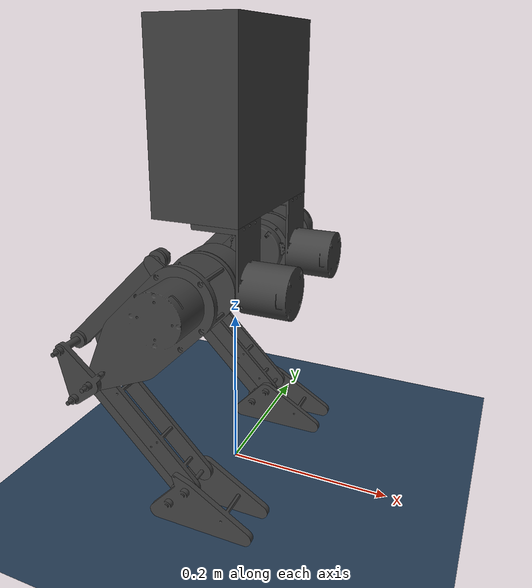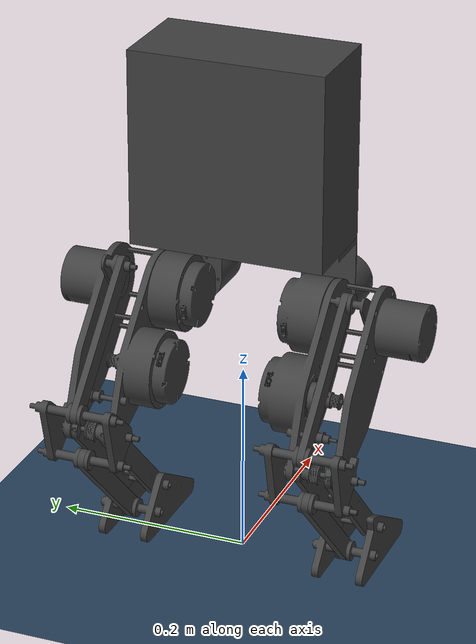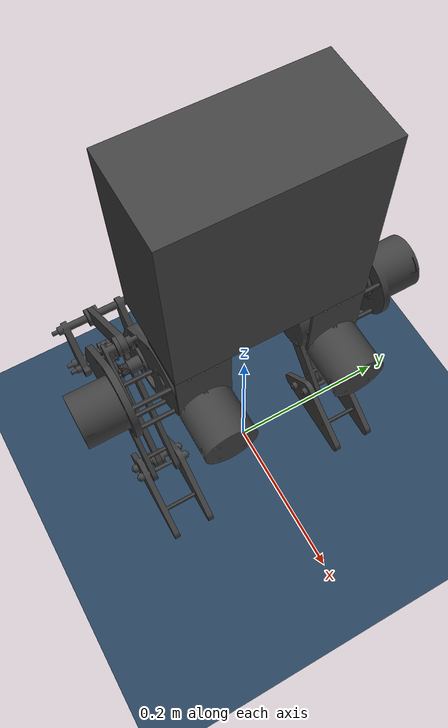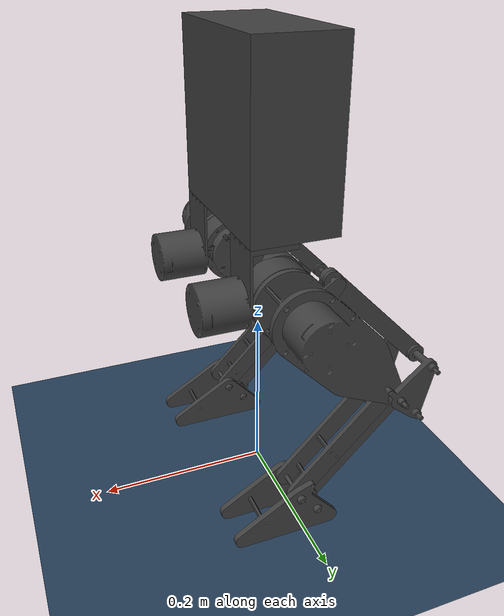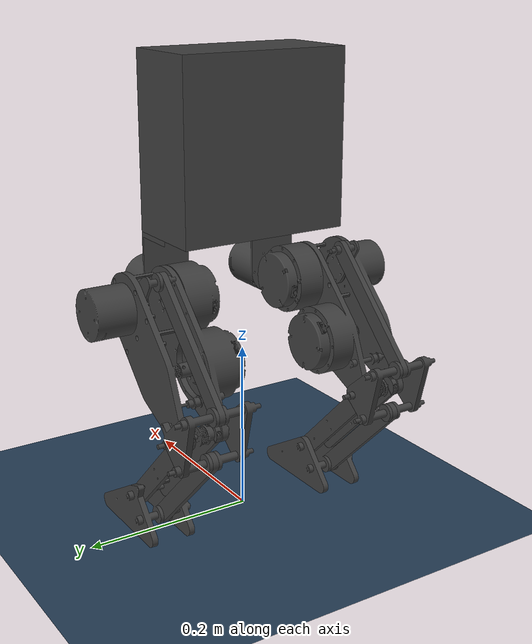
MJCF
<mujoco model="plance ground scene">
  <include file="robot.xml"/>

  <visual>
    <headlight diffuse="0.6 0.6 0.6" ambient="0.3 0.3 0.3" specular="0 0 0"/>
    <rgba haze="0.15 0.25 0.35 1"/>
    <global azimuth="150" elevation="-20"/>
  </visual>

  <asset>
    <texture type="skybox" builtin="gradient" rgb1="0.3 0.5 0.7" rgb2="0 0 0" width="512" height="3072"/>
    <texture type="2d" name="groundplane" builtin="checker" mark="edge" rgb1="0.2 0.3 0.4" rgb2="0.1 0.2 0.3"
      markrgb="0.8 0.8 0.8" width="300" height="300"/>
    <material name="groundplane" texture="groundplane" texuniform="true" texrepeat="5 5" reflectance="0.2"/>
  </asset>

  <worldbody>
    <light pos="0 0 3" dir="0 0 -1" directional="false"/>
    <geom name="floor" size="0 0 .125" type="plane" material="groundplane" conaffinity="15" condim="3"/>
  </worldbody>
</mujoco>

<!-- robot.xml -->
<mujoco model="robot">

    <option
        timestep="0.0005"
        integrator="implicitfast"
        solver="Newton"
        cone="elliptic"
        tolerance="1e-10">

        <flag nativeccd="disable"/>
    </option>

    <compiler
      balanceinertia="false"
      angle="degree"
      eulerseq="xyz"
      meshdir="asset\v5"
      discardvisual="false"
      inertiafromgeom="false"/>

    <asset>
        <material name="black_visual"
              rgba="0.25 0.25 0.25 1"
              specular="0.1"
              shininess="0.1"/>

        <mesh name="base" file="Base.STL"/>
        <mesh name="pelvis_left" file="Pelvis_Left.STL"/>
        <mesh name="thigh_1_left" file="Thigh_1_Left.STL"/>
        <mesh name="thigh_2_left" file="Thigh_2_Left.STL"/>
        <mesh name="ankle_1_left" file="Anlke_1_Left.STL"/>
        <mesh name="ankle_2_left" file="Anlke_2_Left.STL"/>
        <mesh name="ankle_3_left" file="Anlke_3_Left.STL"/>
        <mesh name="ankle_4_left" file="Anlke_4_Left.STL"/>
        <mesh name="calf_left" file="Calf_Left.STL"/>
        <mesh name="feet_left" file="Feet_Left.STL"/>

        <mesh name="pelvis_right" file="Pelvis_Right.STL"/>
        <mesh name="thigh_1_right" file="Thigh_1_Right.STL"/>
        <mesh name="thigh_2_right" file="Thigh_2_Right.STL"/>
        <mesh name="ankle_1_right" file="Anlke_1_Right.STL"/>
        <mesh name="ankle_2_right" file="Anlke_2_Right.STL"/>
        <mesh name="ankle_3_right" file="Anlke_3_Right.STL"/>
        <mesh name="ankle_4_right" file="Anlke_4_Right.STL"/>
        <mesh name="calf_right" file="Calf_Right.STL"/>
        <mesh name="feet_right" file="Feet_Right.STL"/>
    </asset>

    <default>
        <geom contype="0" conaffinity="0" condim="1" solref="0.005 1"/>
        <equality solref="0.005 1"/>

        <default class="visual">
            <geom group="2" material="black_visual"/>
        </default>

        <default class="collision">
            <geom group="3" rgba="0.3 0.75 1.0 0.25"/>
            <default class="collision-left">
                <geom contype="2" conaffinity="4"/>
            </default>
            <default class="collision-right">
                <geom contype="4" conaffinity="2"/>
            </default>
        </default>
    </default>

    <worldbody>
        <light name="spotlight" mode="targetbody" target="base" pos="0 -1 2"/>

        <!-- Base -->
        <body name="base" pos="0 0 0.3418" childclass="visual">
            <camera name="track" pos="0 -3 1" zaxis="0 -1 0.5" mode="track"/>
            <inertial pos="0 0 0.1" mass="2.0"
                fullinertia="0.013333 0.008333 0.008333 0.0 0.0 0.0"/>
            <geom type="mesh" mesh="base"/>
            <geom type="box" pos="0.0 0.0 0.1" size="0.05 0.1 0.1" class="collision"/>
            <freejoint/>
            <site name="imu" size="0.001"/>

        <!-- Left Leg -->
            <!-- Pelvis Left -->
            <body name="pelvis_left" pos="0.055 0.0715 -0.07" childclass="visual">
                <inertial pos="0.012326 0.0 0.010400" mass="0.385536"
                    fullinertia="0.000360 0.000475 0.000284 0.0 0.000154 0.0"/>
                <geom type="mesh" mesh="pelvis_left"/>
                <geom type="capsule" fromto="0.046 0.0 0.0 -0.008 0.0 0.0" size="0.0285" class="collision-left"/>

                <!-- Thigh 1 Left -->
                <body name="thigh_1_left" pos="-0.04912 0 0" childclass="visual">
                    <inertial pos="0.000476 -0.002984 0.0" mass="0.422706"
                        fullinertia="0.000209 0.000306 0.000218 -0.000001 0.0 0.0"/>
                    <geom type="mesh" mesh="thigh_1_left"/>
                    <joint name="hip_roll_left" type="hinge" axis="1 0 0" range="-30 30" damping="0.01" actuatorfrcrange="-14 14"/>

                    <!-- Thigh 2 Left -->
                    <body name="thigh_2_left" pos="0 0.01919 0" childclass="visual">
                        <inertial pos="-0.037011 0.022153 -0.037058" mass="1.142395"
                            fullinertia="0.003431 0.003003 0.003446 -0.000943 -0.001109 -0.000943"/>
                        <geom type="mesh" mesh="thigh_2_left"/>
                        <geom type="capsule" fromto="0.0 -0.028 0.0 0.0 0.054 0.0" size="0.03925" class="collision-left"/>
                        <geom type="capsule" fromto="0.0 0.1 0.0 0.0 0.054 0.0" size="0.0285" class="collision-left"/>
                        <geom type="capsule" fromto="0.0 0.027 0.0 -0.05904 0.027 -0.05904" size="0.03925" class="collision-left"/>
                        <geom type="capsule" fromto="-0.05904 -0.028 -0.05904 -0.05904 0.0 -0.05904" size="0.03925" class="collision-left"/>
                        <geom type="capsule" fromto="-0.0868 0.027 -0.0868 -0.1017 0.027 -0.1017" size="0.027" class="collision-left"/>
                        <joint name="hip_pitch_left" type="hinge" axis="0 1 0" range="-45 45" damping="0.01" actuatorfrcrange="-17 17"/>

                        <!-- Ankle 1 Left -->
                        <body name="ankle_1_left" pos="0 0.0476 0" childclass="visual">
                            <inertial pos="-0.016778 -0.006277 0.016778" mass="0.020857"
                                fullinertia="0.000007 0.000012 0.000007 -0.000002 0.000005 0.000002"/>
                            <geom type="mesh" mesh="ankle_1_left"/>
                            <joint name="ankle_pitch_left" type="hinge" axis="0 1 0" range="-30 30" damping="0.01" actuatorfrcrange="-14 14"/>

                            <!-- Ankle 2 Left -->
                            <body name="ankle_2_left" pos="-0.03536 -0.0241 0.03536" childclass="visual">
                                <inertial pos="-0.056038 0.003500 -0.056038" mass="0.02184914"
                                    fullinertia="0.000066 0.000131 0.000066 0.0 -0.000063 0.0"/>
                                <geom type="mesh" mesh="ankle_2_left"/>
                                <joint name="ankle_passive_1_left" type="hinge" axis="0 1 0" damping="0.01"/>
                                <site name="linkage_1a_left" pos="-0.11208 0.0035 -0.11208" size="0.001"/>
                            </body>
                        </body>

                        <!-- Ankle 3 Left -->
                        <body name="ankle_3_left" pos="-0.11208 0.057 -0.11208" childclass="visual">
                            <inertial pos="-0.022094 -0.029625 0.006820" mass="0.041838"
                                fullinertia="0.000058 0.000025 0.000045 -0.000001 0.000005 0.0"/>
                            <geom type="mesh" mesh="ankle_3_left"/>
                            <joint name="ankle_passive_2_left" type="hinge" axis="0 1 0" damping="0.01"/>
                            <site name="linkage_1b_left" pos="-0.03536 -0.03 0.03536" size="0.001"/>

                            <!-- Ankle 4 Left -->
                            <body name="ankle_4_left" pos="-0.02121 -0.0335 -0.02121" childclass="visual">
                                <inertial pos="0.05603821 0.00350000 -0.05603821" mass="0.02184914"
                                    fullinertia="0.00002337 0.00004656 0.00002337 -0.00000005 0.00002253 0.00000005"/>
                                <geom type="mesh" mesh="ankle_4_left"/>
                                <joint name="ankle_passive_3_left" type="hinge" axis="0 1 0" damping="0.01"/>
                                <site name="linkage_2a_left" pos="0.11208 0.0035 -0.11208" size="0.001"/>
                            </body>
                        </body>

                        <!-- Calf Left -->
                        <body name="calf_left" pos="-0.11208 0.0395 -0.11208" childclass="visual">
                            <inertial pos="0.052942 -0.012698 -0.052849" mass="0.151862"
                                fullinertia="0.000247 0.000425 0.000246 -0.000002 0.000206 0.000002"/>
                            <geom type="mesh" mesh="calf_left"/>
                            <geom type="capsule" fromto="0.0 -0.0125 0.0 0.11208 -0.0125 -0.11208" size="0.0185" class="collision-left"/>
                            <joint name="calf_pitch_left" type="hinge" axis="0 1 0" range="-30 30" damping="0.01" actuatorfrcrange="-25.5 25.5"/>

                            <!-- Feet Left -->
                            <body name="feet_left" pos="0.11208 0.0075 -0.11208" childclass="visual">
                                <inertial pos="0.009935 -0.019749 -0.025418" mass="0.072179"
                                    fullinertia="0.000053 0.000081 0.000104 0.0 0.000005 -0.000001"/>
                                <geom type="mesh" mesh="feet_left"/>
                                <geom type="capsule" fromto="-0.02054 -0.02 -0.02054 0.05187 -0.02 -0.02054" size="0.027" class="collision-left"/>
                                <geom type="capsule" fromto="0.07 0.007 -0.03854 0.07 -0.047 -0.03854" size="0.009" class="collision-left"/>
                                <geom type="capsule" fromto="-0.03854 0.007 -0.03854 -0.03854 -0.047 -0.03854" size="0.009" class="collision-left"/>
                                <joint name="ankle_pitch_passive_4_left" type="hinge" axis="0 1 0" range="-30 30" damping="0.01"/>
                                <site name="linkage_2b_left" pos="-0.02121 -0.02 -0.02121" size="0.001"/>
                            </body>
                        </body>
                    </body>
                </body>
            </body>

        <!-- Right Leg -->
            <!-- Pelvis Right -->
            <body name="pelvis_right" pos="0.055 -0.0715 -0.07" childclass="visual">
                    <inertial pos="0.012326 0.0 0.010400" mass="0.385536"
                        fullinertia="0.000360 0.000475 0.000284 0.0 0.000154 0.0"/>
                    <geom type="mesh" mesh="pelvis_right"/>
                    <geom type="capsule" fromto="0.046 0.0 0.0 -0.008 0.0 0.0" size="0.0285" class="collision-right"/>

                <!-- Thigh 1 Right -->
                <body name="thigh_1_right" pos="-0.04912 0 0" childclass="visual">
                    <inertial pos="0.000476 0.002984 0.0" mass="0.422706"
                        fullinertia="0.000209 0.000306 0.000218 0.000001 0.0 0.0"/>
                    <geom type="mesh" mesh="thigh_1_right"/>
                    <joint name="hip_roll_right" type="hinge" axis="-1 0 0" range="-30 30" damping="0.01" actuatorfrcrange="-14 14"/>

                    <!-- Thigh 2 Right -->
                    <body name="thigh_2_right" pos="0 -0.01919 0" childclass="visual">
                        <inertial pos="-0.037011 -0.022153 -0.037058" mass="1.142395"
                            fullinertia="0.003431 0.003003 0.003446 0.000943 -0.001109 0.000943"/>
                        <geom type="mesh" mesh="thigh_2_right"/>
                        <geom type="capsule" fromto="0.0 0.028 0.0 0.0 -0.054 0.0" size="0.03925" class="collision-right"/>
                        <geom type="capsule" fromto="0.0 -0.1 0.0 0.0 -0.054 0.0" size="0.0285" class="collision-right"/>
                        <geom type="capsule" fromto="0.0 -0.027 0.0 -0.05904 -0.027 -0.05904" size="0.03925" class="collision-right"/>
                        <geom type="capsule" fromto="-0.05904 0.028 -0.05904 -0.05904 0.0 -0.05904" size="0.03925" class="collision-right"/>
                        <geom type="capsule" fromto="-0.0868 -0.027 -0.0868 -0.1017 -0.027 -0.1017" size="0.027" class="collision-right"/>
                        <joint name="hip_pitch_right" type="hinge" axis="0 1 0" range="-45 45" damping="0.01" actuatorfrcrange="-17 17"/>

                        <!-- Ankle 1 Right -->
                        <body name="ankle_1_right" pos="0 -0.0476 0" childclass="visual">
                            <inertial pos="-0.016778 0.006277 0.016778" mass="0.020857"
                                fullinertia="0.000007 0.000012 0.000007 0.000002 0.000005 -0.000002"/>
                            <geom type="mesh" mesh="ankle_1_right"/>
                            <joint name="ankle_pitch_right" type="hinge" axis="0 1 0" range="-30 30" damping="0.01" actuatorfrcrange="-14 14"/>

                            <!-- Ankle 2 Right -->
                            <body name="ankle_2_right" pos="-0.03536 0.0241 0.03536" childclass="visual">
                                <inertial pos="-0.056038 -0.003500 -0.056038" mass="0.02184914"
                                    fullinertia="0.000066 0.000131 0.000066 0.0 -0.000063 0.0"/>
                                <geom type="mesh" mesh="ankle_2_right"/>
                                <joint name="ankle_passive_1_right" type="hinge" axis="0 1 0" damping="0.01"/>
                                <site name="linkage_1a_right" pos="-0.11208 -0.0035 -0.11208" size="0.001"/>
                            </body>
                        </body>

                        <!-- Ankle 3 Right -->
                        <body name="ankle_3_right" pos="-0.11208 -0.057 -0.11208" childclass="visual">
                            <inertial pos="-0.022094 0.029625 0.006820" mass="0.041838"
                                fullinertia="0.000058 0.000025 0.000045 0.000001 0.000005 0.0"/>
                            <geom type="mesh" mesh="ankle_3_right"/>
                            <joint name="ankle_passive_2_right" type="hinge" axis="0 1 0" damping="0.01"/>
                            <site name="linkage_1b_right" pos="-0.03536 0.03 0.03536" size="0.001"/>

                            <!-- Ankle 4 Right -->
                            <body name="ankle_4_right" pos="-0.02121 0.0335 -0.02121" childclass="visual">
                                <inertial pos="0.05603821 -0.00350000 -0.05603821" mass="0.02184914"
                                    fullinertia="0.00002337 0.00004656 0.00002337 0.00000005 0.00002253 -0.00000005"/>
                                <geom type="mesh" mesh="ankle_4_right"/>
                                <joint name="ankle_passive_3_right" type="hinge" axis="0 1 0" damping="0.01"/>
                                <site name="linkage_2a_right" pos="0.11208 0.0035 -0.11208" size="0.001"/>
                            </body>
                        </body>

                        <!-- Calf Right -->
                        <body name="calf_right" pos="-0.11208 -0.0395 -0.11208" childclass="visual">
                            <inertial pos="0.052942 0.012698 -0.052849" mass="0.151862"
                                fullinertia="0.000247 0.000425 0.000246 0.000002 0.000206 -0.000002"/>
                            <geom type="mesh" mesh="calf_right"/>
                            <geom type="capsule" fromto="0.0 0.0125 0.0 0.11208 0.0125 -0.11208" size="0.0185" class="collision-right"/>
                            <joint name="calf_pitch_right" type="hinge" axis="0 1 0" range="-30 30" damping="0.01" actuatorfrcrange="-25.5 25.5"/>

                            <!-- Feet Right -->
                            <body name="feet_right" pos="0.11208 -0.0075 -0.11208" childclass="visual">
                                <inertial pos="0.009935 0.019749 -0.025418" mass="0.072179"
                                    fullinertia="0.000053 0.000081 0.000104 0.0 0.000005 0.000001"/>
                                <geom type="mesh" mesh="feet_right"/>
                                <geom type="capsule" fromto="-0.02054 0.02 -0.02054 0.05187 0.02 -0.02054" size="0.027" class="collision-right"/>
                                <geom type="capsule" fromto="0.07 -0.007 -0.03854 0.07 0.047 -0.03854" size="0.009" class="collision-right"/>
                                <geom type="capsule" fromto="-0.03854 -0.007 -0.03854 -0.03854 0.047 -0.03854" size="0.009" class="collision-right"/>
                                <joint name="ankle_pitch_passive_4_right" type="hinge" axis="0 1 0" range="-30 30" damping="0.01"/>
                                <site name="linkage_2b_right" pos="-0.02121 0.02 -0.02121" size="0.001"/>
                            </body>
                        </body>
                    </body>
                </body>
            </body>
        </body>
    </worldbody>

    <equality>
        <connect name="linkage_1_left" site1="linkage_1a_left" site2="linkage_1b_left"/>
        <connect name="linkage_2_left" site1="linkage_2a_left" site2="linkage_2b_left"/>

        <connect name="linkage_1_right" site1="linkage_1a_right" site2="linkage_1b_right"/>
        <connect name="linkage_2_right" site1="linkage_2a_right" site2="linkage_2b_right"/>
    </equality>

    <actuator>
        <position name="hip_roll_left_motor_00" joint="hip_roll_left" kp="100" kv="1.5" inheritrange="1"/>
        <position name="hip_pitch_left_motor_02" joint="hip_pitch_left" kp="100" kv="1.5" inheritrange="1"/>
        <position name="calf_pitch_left_motor_02" joint="calf_pitch_left" kp="100" kv="1.5" inheritrange="1"/>
        <position name="ankle_pitch_left_motor_00" joint="ankle_pitch_left" kp="100" kv="1.5" inheritrange="1"/>

        <position name="hip_roll_right_motor_00" joint="hip_roll_right" kp="100" kv="1.5" inheritrange="1"/>
        <position name="hip_pitch_right_motor_02" joint="hip_pitch_right" kp="100" kv="1.5" inheritrange="1"/>
        <position name="calf_pitch_right_motor_02" joint="calf_pitch_right" kp="100" kv="1.5" inheritrange="1"/>
        <position name="ankle_pitch_right_motor_00" joint="ankle_pitch_right" kp="100" kv="1.5" inheritrange="1"/>
    </actuator>

    <sensor>
        <jointactuatorfrc name="hip_roll_left_joint" joint="hip_roll_left"/>
        <jointactuatorfrc name="hip_pitch_left_joint" joint="hip_pitch_left"/>
        <jointactuatorfrc name="calf_pitch_left_joint" joint="calf_pitch_left"/>
        <jointactuatorfrc name="ankle_pitch_left_joint" joint="ankle_pitch_left"/>

        <jointactuatorfrc name="hip_roll_right_joint" joint="hip_roll_right"/>
        <jointactuatorfrc name="hip_pitch_right_joint" joint="hip_pitch_right"/>
        <jointactuatorfrc name="calf_pitch_right_joint" joint="calf_pitch_right"/>
        <jointactuatorfrc name="ankle_pitch_right_joint" joint="ankle_pitch_right"/>

        <actuatorfrc name="hip_roll_left_motor_00" actuator="hip_roll_left_motor_00"/>
        <actuatorfrc name="hip_pitch_left_motor_02" actuator="hip_pitch_left_motor_02"/>
        <actuatorfrc name="calf_pitch_left_motor_02" actuator="calf_pitch_left_motor_02"/>
        <actuatorfrc name="ankle_pitch_left_motor_00" actuator="ankle_pitch_left_motor_00"/>

        <actuatorfrc name="hip_roll_right_motor_00" actuator="hip_roll_right_motor_00"/>
        <actuatorfrc name="hip_pitch_right_motor_02" actuator="hip_pitch_right_motor_02"/>
        <actuatorfrc name="calf_pitch_right_motor_02" actuator="calf_pitch_right_motor_02"/>
        <actuatorfrc name="ankle_pitch_right_motor_00" actuator="ankle_pitch_right_motor_00"/>
    </sensor>

</mujoco>
